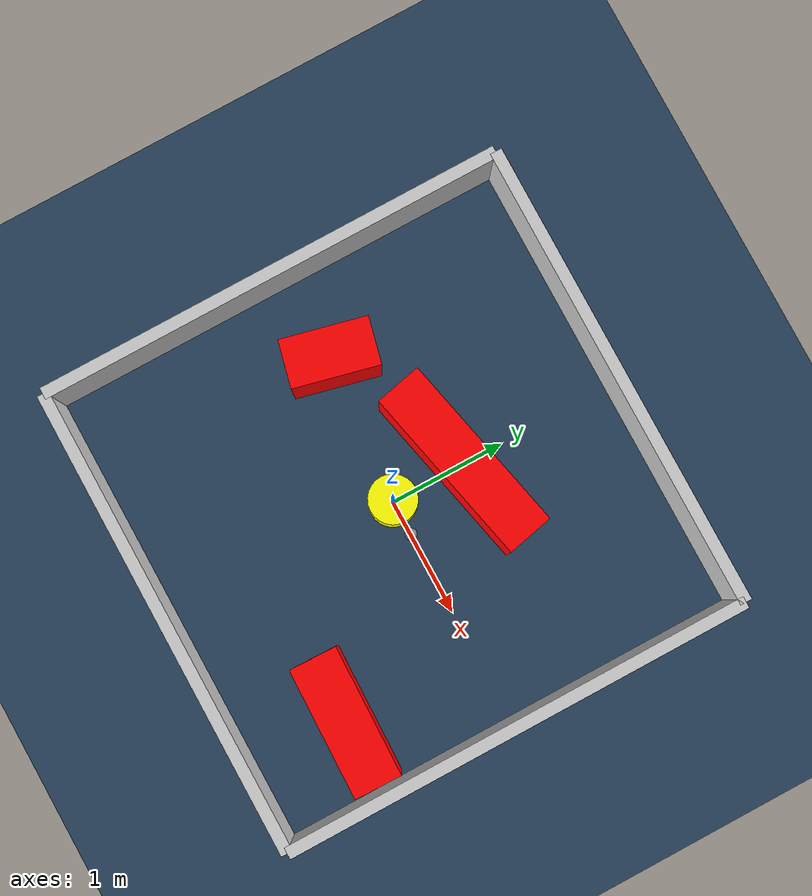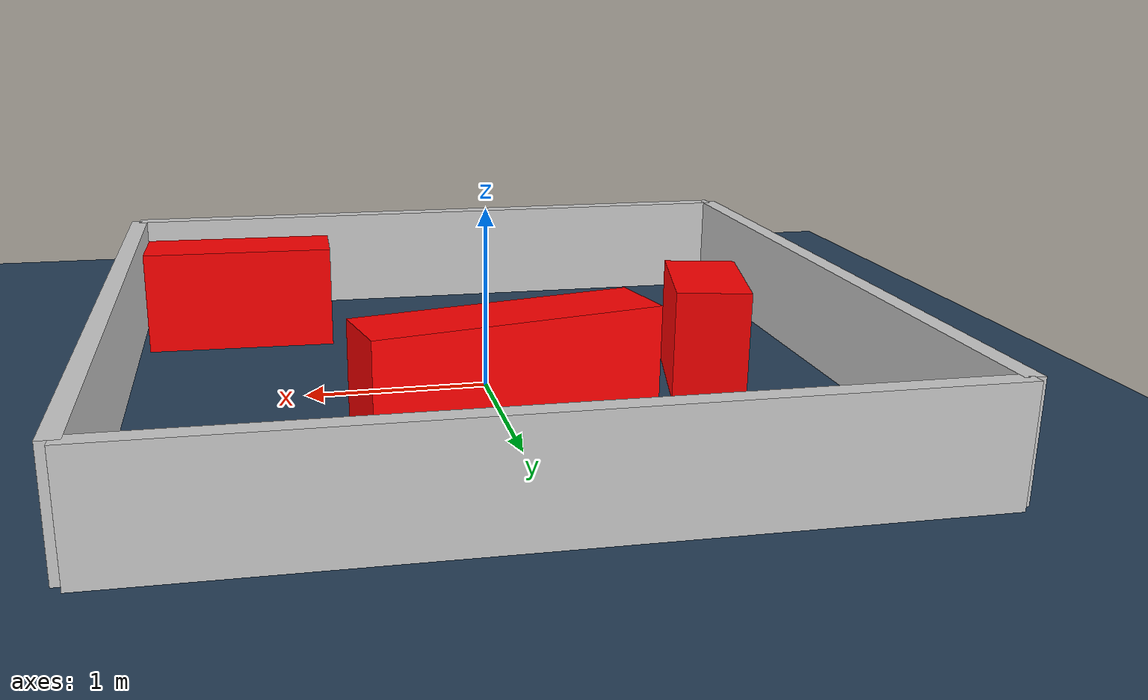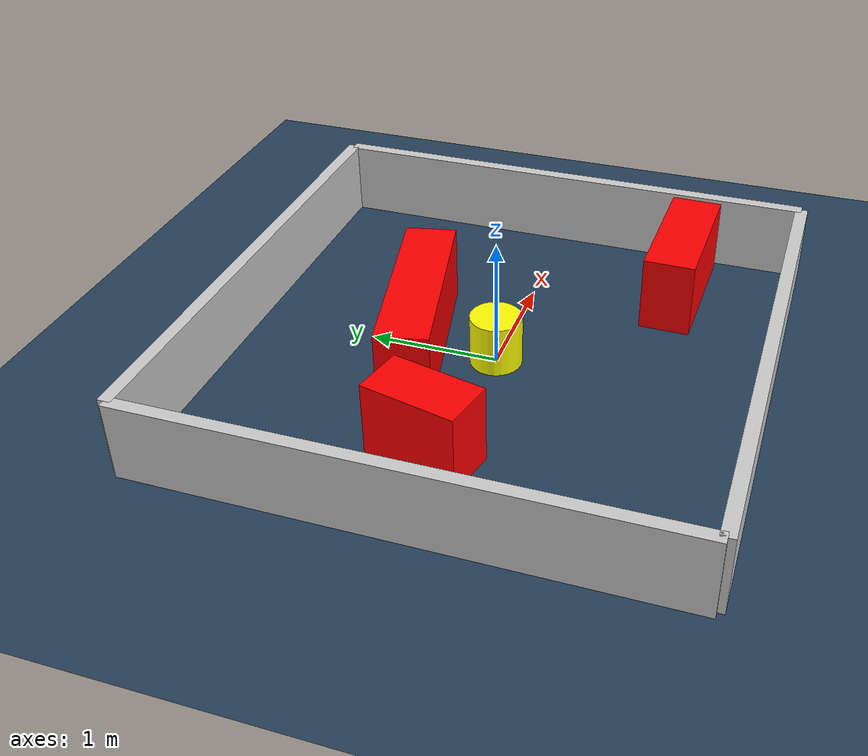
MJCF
<?xml version="1.0" ?>
<mujoco model="generated_environment">
  <option timestep="0.01" integrator="RK4" cone="elliptic"/>
  <default>
    <geom density="1"/>
  </default>
  <asset>
    <texture builtin="gradient" height="3072" rgb1="0.3 0.5 0.7" rgb2="0 0 0" type="skybox" width="512"/>
    <texture builtin="checker" height="300" mark="edge" markrgb="0.8 0.8 0.8" name="groundplane" rgb1="0.2 0.3 0.4" rgb2="0.1 0.2 0.3" type="2d" width="300"/>
    <material name="groundplane" reflectance="0.2" texrepeat="5 5" texture="groundplane" texuniform="true"/>
    <material name="robot" rgba="0.0 1.0 0.0 1"/>
  </asset>
  <worldbody>
    <light dir="0 0 -1" directional="true" pos="0 0 1.5"/>
    <geom condim="4" friction="1.0 0.005 0.001" material="groundplane" name="floor" size="0 0 0.05" type="plane"/>
    <body name="walls">
      <geom name="wall_1" condim="4" pos="-2.0 0.0 0.3" rgba="0.800000011920929 0.800000011920929 0.800000011920929 1.0" size="0.05 2.0 0.3" type="box"/>
      <geom name="wall_2" condim="4" pos="2.0 0.0 0.3" rgba="0.800000011920929 0.800000011920929 0.800000011920929 1.0" size="0.05 2.0 0.3" type="box"/>
      <geom name="wall_3" condim="4" pos="0.0 -2.0 0.3" rgba="0.800000011920929 0.800000011920929 0.800000011920929 1.0" size="2.0 0.05 0.3" type="box"/>
      <geom name="wall_4" condim="4" pos="0.0 2.0 0.3" rgba="0.800000011920929 0.800000011920929 0.800000011920929 1.0" size="2.0 0.05 0.3" type="box"/>
    </body>
    <body name="robot">
      <joint name="joint_x" type="slide" pos="0 0 0" axis="1 0 0"/>
      <joint name="joint_y" type="slide" pos="0 0 0" axis="0 1 0"/>
      <geom name="robot" type="sphere" pos="0.3 0.0 0.2" size="0.05" mass="5." friction="1.0 0.005 0.0001" condim="4" rgba="0.5 0.5 0.5 1.0"/>
      <site name="sensor_ball"/>
    </body>
    <body name="obstacle_movable_1">
      <geom name="obstacle_movable_1" condim="4" pos="0.0 0.0 0.2" euler="0 0 0.0" friction="1.0 0.005 0.001" rgba="1.0 1.0 0.0 1.0" size="0.2 0.2 0.0" type="cylinder" mass="0.1"/>
      <joint type="free"/>
    </body>
    <body name="obstacle_2_static">
      <geom name="obstacle_2_static" condim="4" pos="0.00420185009123375 0.622162324395753 0.3" euler="0 0 192.6114789984281" friction="1.0 0.005 0.001" rgba="1 0 0 1" size="0.7764201714735404 0.2 0.3" type="box"/>
    </body>
    <body name="obstacle_3_static">
      <geom name="obstacle_3_static" condim="4" pos="-1.2270448142702362 0.10806799803081746 0.3" euler="0 0 76.74430357670747" friction="1.0 0.005 0.001" rgba="1 0 0 1" size="0.36469564478316907 0.2 0.3" type="box"/>
    </body>
    <body name="obstacle_4_static">
      <geom name="obstacle_4_static" condim="4" pos="1.3421630511068032 -1.1425136481517313 0.3" euler="0 0 358.7970323219318" friction="1.0 0.005 0.001" rgba="1 0 0 1" size="0.5515356134894442 0.2 0.3" type="box"/>
    </body>
  </worldbody>
  <actuator>
    <motor name="actuator_x" joint="joint_x" gear="1" ctrlrange="-1 1"/>
    <motor name="actuator_y" joint="joint_y" gear="1" ctrlrange="-1 1"/>
  </actuator>
</mujoco>
